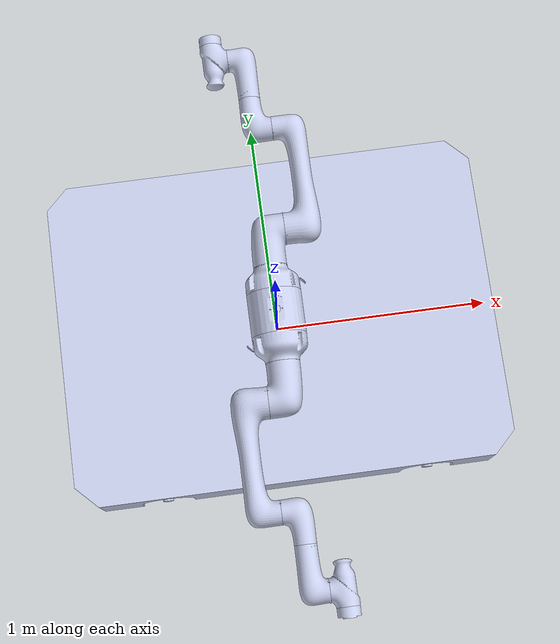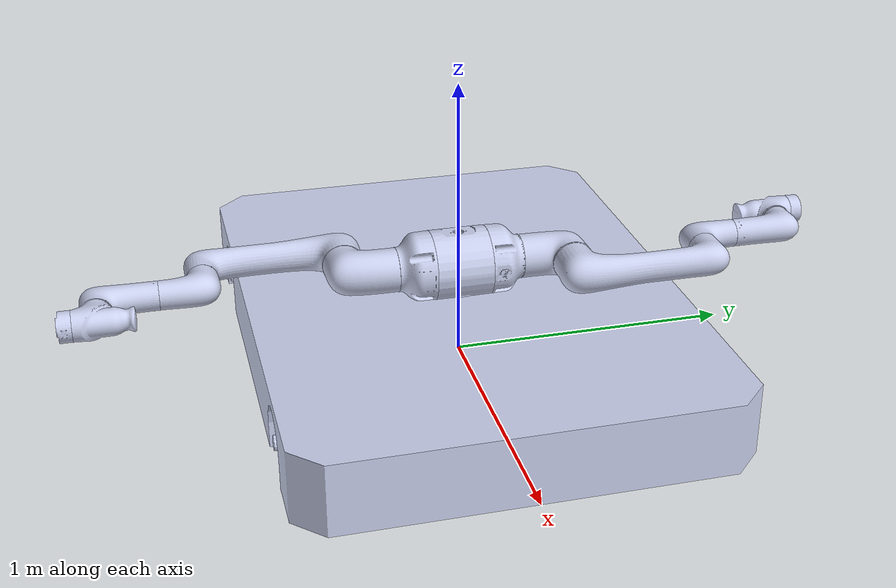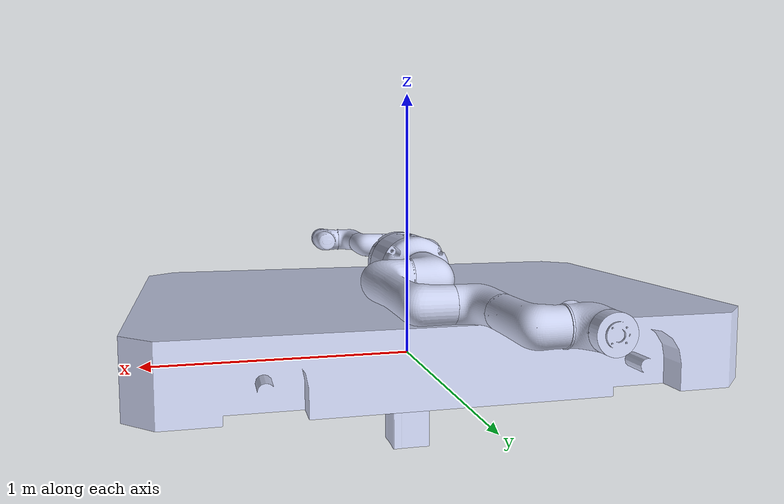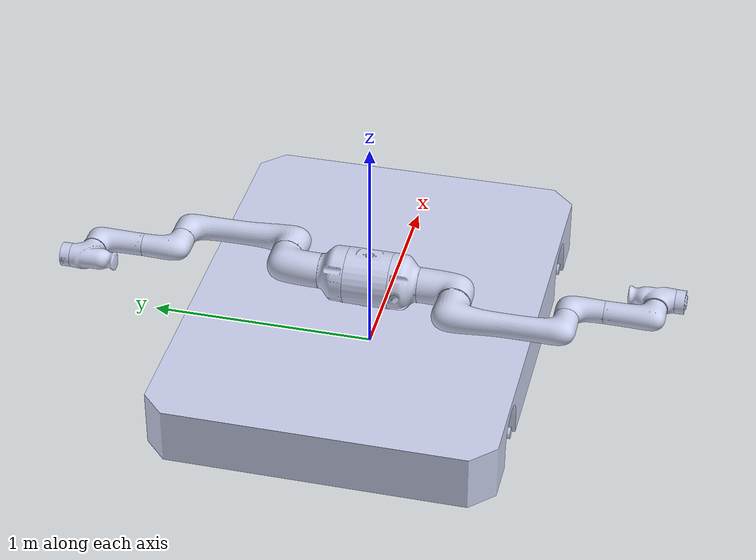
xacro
<?xml version="1.0"?>
<robot xmlns:xacro="http://www.ros.org/wiki/xacro" name="agv_description">
    <xacro:arg name="initial_positions_file" default="initial_positions.yaml" />

    <!-- Import agv_description urdf file -->
    <xacro:include filename="$(find agv_description)/urdf/agv_robot.urdf.xacro" />

    <!-- Import control_xacro -->
    <xacro:include filename="agv_description.ros2_control.xacro" />

    <xacro:agv_description_ros2_control name="FakeSystem" initial_positions_file="$(arg initial_positions_file)"/>

</robot>

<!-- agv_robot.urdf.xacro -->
<robot name="agv_description" xmlns:xacro="http://www.ros.org/wiki/xacro">

   <xacro:include filename="agv.xacro" />
   <xacro:include filename="agv_description.ros2_control.xacro" />

</robot>

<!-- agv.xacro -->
<robot xmlns:xacro="http://www.ros.org/wiki/xacro">
  <link
    name="base_link">
    <visual>
      <origin
        xyz="0 0 0"
        rpy="0 0 0" />
      <geometry>
        <mesh
          filename="package://agv_description/meshes/base_link.STL" />
      </geometry>
      <material
        name="">
        <color
          rgba="0.792156862745098 0.819607843137255 0.933333333333333 1" />
      </material>
    </visual>
    <collision>
      <origin
        xyz="0 0 0"
        rpy="0 0 0" />
      <geometry>
        <mesh
          filename="package://agv_description/meshes/base_link.STL" />
      </geometry>
    </collision>
  </link>
  <link
    name="lifting_link">
    <inertial>
      <origin
        xyz="5.95910210029443E-06 0.00179615723991137 -0.0915010153826553"
        rpy="0 0 0" />
      <mass
        value="1.35631793260657" />
      <inertia
        ixx="0.0128415081438936"
        ixy="5.9467051362697E-08"
        ixz="1.72841080463547E-07"
        iyy="0.0128594321437457"
        iyz="5.20967478268299E-05"
        izz="0.0124594541204705" />
    </inertial>
    <visual>
      <origin
        xyz="0 0 0"
        rpy="0 0 0" />
      <geometry>
        <mesh
          filename="package://agv_description/meshes/lifting_link.STL" />
      </geometry>
      <material
        name="">
        <color
          rgba="0.792156862745098 0.819607843137255 0.933333333333333 1" />
      </material>
    </visual>
    <collision>
      <origin
        xyz="0 0 0"
        rpy="0 0 0" />
      <geometry>
        <mesh
          filename="package://agv_description/meshes/lifting_link.STL" />
      </geometry>
    </collision>
  </link>
  <joint
    name="lifiting_joint"
    type="prismatic">
    <origin
      xyz="0 0 0"
      rpy="0 0 0" />
    <parent
      link="base_link" />
    <child
      link="lifting_link" />
    <axis
      xyz="0 0 1" />
    <limit
      lower="0"
      upper="0.5"
      effort="1000.0"
      velocity="0.5" />
  </joint>
  <link
    name="revolute_link">
    <inertial>
      <origin
        xyz="-1.84358108030458E-06 -0.000638442576643136 0.176227588646549"
        rpy="0 0 0" />
      <mass
        value="4.96842256256156" />
      <inertia
        ixx="0.125435241645885"
        ixy="1.77784044747171E-05"
        ixz="1.7242148412289E-06"
        iyy="0.130792947941861"
        iyz="0.000498856576232733"
        izz="0.0514999816727782" />
    </inertial>
    <visual>
      <origin
        xyz="0 0 0"
        rpy="0 0 0" />
      <geometry>
        <mesh
          filename="package://agv_description/meshes/revolute_link.STL" />
      </geometry>
      <material
        name="">
        <color
          rgba="0.792156862745098 0.819607843137255 0.933333333333333 1" />
      </material>
    </visual>
    <collision>
      <origin
        xyz="0 0 0"
        rpy="0 0 0" />
      <geometry>
        <mesh
          filename="package://agv_description/meshes/revolute_link.STL" />
      </geometry>
    </collision>
  </link>
  <joint
    name="revolute_joint"
    type="revolute">
    <origin
      xyz="0 0 0"
      rpy="0 0 0" />
    <parent
      link="lifting_link" />
    <child
      link="revolute_link" />
    <axis
      xyz="0 0 1" />
    <limit effort = "1000.0" velocity = "1.0" lower = "-3.14" upper = "3.14"/>
  </joint>

  <!-- arm1 description-->
  <link
    name="arm1_base">
    <inertial>
      <origin
        xyz="6.36038578418003E-05 -0.00504182675650544 0.0531490934325672"
        rpy="0 0 0" />
      <mass
        value="4.79371578157624" />
      <inertia
        ixx="0.0227910482676444"
        ixy="2.040692513631E-05"
        ixz="-5.84528941452051E-05"
        iyy="0.0192908399102185"
        iyz="-0.000325443374085853"
        izz="0.0321199446825035" />
    </inertial>
    <visual>
      <origin
        xyz="0 0 0"
        rpy="0 0 0" />
      <geometry>
        <mesh
          filename="package://agv_description/meshes/arm1_base.STL" />
      </geometry>
      <material
        name="">
        <color
          rgba="0.792156862745098 0.819607843137255 0.933333333333333 1" />
      </material>
    </visual>
    <collision>
      <origin
        xyz="0 0 0"
        rpy="0 0 0" />
      <geometry>
        <mesh
          filename="package://agv_description/meshes/arm1_base.STL" />
      </geometry>
    </collision>
  </link>
  <joint
    name="arm1_base"
    type="fixed">
    <origin
      xyz="0.00033177 0.099999 0.34041"
      rpy="1.5708 0 3.1383" />
    <parent
      link="revolute_link" />
    <child
      link="arm1_base" />
    <axis
      xyz="0 0 0" />
  </joint>
  <link
    name="arm1_joint1">
    <inertial>
      <origin
        xyz="0.00698710220352433 -0.546027035582058 -0.230837638466822"
        rpy="0 0 0" />
      <mass
        value="128.434205754724" />
      <inertia
        ixx="44.098206499555"
        ixy="0.188535463079881"
        ixz="0.217520837518627"
        iyy="29.8163554666647"
        iyz="-0.0220239676282299"
        izz="22.362919163985" />
    </inertial>
    <visual>
      <origin
        xyz="0 0 0"
        rpy="0 0 0" />
      <geometry>
        <mesh
          filename="package://agv_description/meshes/arm1_joint1.STL" />
      </geometry>
      <material
        name="">
        <color
          rgba="0.792156862745098 0.819607843137255 0.933333333333333 1" />
      </material>
    </visual>
    <collision>
      <origin
        xyz="0 0 0"
        rpy="0 0 0" />
      <geometry>
        <mesh
          filename="package://agv_description/meshes/arm1_joint1.STL" />
      </geometry>
    </collision>
  </link>
  <joint
    name="arm1_joint1"
    type="revolute">
    <origin
      xyz="0 0 0.125"
      rpy="0 0 0" />
    <parent
      link="arm1_base" />
    <child
      link="arm1_joint1" />
    <axis
      xyz="0 0 1" />
    <limit effort = "1000.0" velocity = "1.0" lower = "-3.14" upper = "3.14"/>
  </joint>
  <link
    name="arm1_joint2">
    <inertial>
      <origin
        xyz="0.205520637253144 -7.64475431735967E-07 0.0942728353828256"
        rpy="0 0 0" />
      <mass
        value="7.38382743981553" />
      <inertia
        ixx="0.0158523121028764"
        ixy="5.54313928804556E-07"
        ixz="-0.00195030786508713"
        iyy="0.237335851537481"
        iyz="-2.91994561342932E-07"
        izz="0.235952812528342" />
    </inertial>
    <visual>
      <origin
        xyz="0 0 0"
        rpy="0 0 0" />
      <geometry>
        <mesh
          filename="package://agv_description/meshes/arm1_joint2.STL" />
      </geometry>
      <material
        name="">
        <color
          rgba="0.792156862745098 0.819607843137255 0.933333333333333 1" />
      </material>
    </visual>
    <collision>
      <origin
        xyz="0 0 0"
        rpy="0 0 0" />
      <geometry>
        <mesh
          filename="package://agv_description/meshes/arm1_joint2.STL" />
      </geometry>
    </collision>
  </link>
  <joint
    name="arm1_joint2"
    type="revolute">
    <origin
      xyz="-0.0865 0 0.171"
      rpy="3.1416 -1.5708 3.1416" />
    <parent
      link="arm1_joint1" />
    <child
      link="arm1_joint2" />
    <axis
      xyz="0 0 1" />
    <limit effort = "1000.0" velocity = "1.0" lower = "-3.14" upper = "3.14"/>
  </joint>
  <link
    name="arm1_joint3">
    <inertial>
      <origin
        xyz="0.0413057853539247 -1.50466668225047E-06 -0.0742848759305056"
        rpy="0 0 0" />
      <mass
        value="2.08922080941151" />
      <inertia
        ixx="0.0035083422225272"
        ixy="-4.24979622469626E-07"
        ixz="0.00201900302554952"
        iyy="0.0076259021363271"
        iyz="1.58647917742713E-07"
        izz="0.0071666425488523" />
    </inertial>
    <visual>
      <origin
        xyz="0 0 0"
        rpy="0 0 0" />
      <geometry>
        <mesh
          filename="package://agv_description/meshes/arm1_joint3.STL" />
      </geometry>
      <material
        name="">
        <color
          rgba="0.792156862745098 0.819607843137255 0.933333333333333 1" />
      </material>
    </visual>
    <collision>
      <origin
        xyz="0 0 0"
        rpy="0 0 0" />
      <geometry>
        <mesh
          filename="package://agv_description/meshes/arm1_joint3.STL" />
      </geometry>
    </collision>
  </link>
  <joint
    name="arm1_joint3"
    type="revolute">
    <origin
      xyz="0.49 0 0.01"
      rpy="0 0 0" />
    <parent
      link="arm1_joint2" />
    <child
      link="arm1_joint3" />
    <axis
      xyz="0 0 1" />
    <limit effort = "1000.0" velocity = "1.0" lower = "-3.14" upper = "3.14"/>
  </joint>
  <link
    name="arm1_joint4">
    <inertial>
      <origin
        xyz="2.17507435673614E-13 -9.17821374457617E-13 0.0157947014323612"
        rpy="0 0 0" />
      <mass
        value="0.221342913273185" />
      <inertia
        ixx="0.000147801577510412"
        ixy="1.35870784819709E-10"
        ixz="-2.04633945966248E-16"
        iyy="0.00014796904051447"
        iyz="-2.30770455536986E-15"
        izz="0.000265196663946203" />
    </inertial>
    <visual>
      <origin
        xyz="0 0 0"
        rpy="0 0 0" />
      <geometry>
        <mesh
          filename="package://agv_description/meshes/arm1_joint4.STL" />
      </geometry>
      <material
        name="">
        <color
          rgba="0.792156862745098 0.819607843137255 0.933333333333333 1" />
      </material>
    </visual>
    <collision>
      <origin
        xyz="0 0 0"
        rpy="0 0 0" />
      <geometry>
        <mesh
          filename="package://agv_description/meshes/arm1_joint4.STL" />
      </geometry>
    </collision>
  </link>
  <joint
    name="arm1_joint4"
    type="revolute">
    <origin
      xyz="0.1475 0 -0.0915"
      rpy="0 1.5708 0" />
    <parent
      link="arm1_joint3" />
    <child
      link="arm1_joint4" />
    <axis
      xyz="0 0 1" />
    <limit effort = "1000.0" velocity = "1.0" lower = "-3.14" upper = "3.14"/>
  </joint>
  <link
    name="arm1_joint5">
    <inertial>
      <origin
        xyz="-0.00936173038682209 -6.40112606601351E-05 -0.0650899734413501"
        rpy="0 0 0" />
      <mass
        value="1.71702187429738" />
      <inertia
        ixx="0.00243366242204774"
        ixy="-1.28905945765869E-07"
        ixz="0.000735354203280107"
        iyy="0.00342166024563042"
        iyz="6.54937535778116E-08"
        izz="0.00331985988662609" />
    </inertial>
    <visual>
      <origin
        xyz="0 0 0"
        rpy="0 0 0" />
      <geometry>
        <mesh
          filename="package://agv_description/meshes/arm1_joint5.STL" />
      </geometry>
      <material
        name="">
        <color
          rgba="0.792156862745098 0.819607843137255 0.933333333333333 1" />
      </material>
    </visual>
    <collision>
      <origin
        xyz="0 0 0"
        rpy="0 0 0" />
      <geometry>
        <mesh
          filename="package://agv_description/meshes/arm1_joint5.STL" />
      </geometry>
    </collision>
  </link>
  <joint
    name="arm1_joint5"
    type="revolute">
    <origin
      xyz="0.0737 0 0.2125"
      rpy="3.1416 -1.5708 3.1416" />
    <parent
      link="arm1_joint4" />
    <child
      link="arm1_joint5" />
    <axis
      xyz="0 0 1" />
    <limit effort = "1000.0" velocity = "1.0" lower = "-3.14" upper = "3.14"/>
  </joint>
  <link
    name="arm1_joint6">
    <inertial>
      <origin
        xyz="-0.000164531562171 -1.87838411491725E-10 0.0256318537460429"
        rpy="0 0 0" />
      <mass
        value="0.403264772919737" />
      <inertia
        ixx="0.000341839114766193"
        ixy="2.50676289876056E-13"
        ixz="4.35642240033976E-07"
        iyy="0.00033844935912272"
        iyz="-1.27479057506192E-12"
        izz="0.000524924259169463" />
    </inertial>
    <visual>
      <origin
        xyz="0 0 0"
        rpy="0 0 0" />
      <geometry>
        <mesh
          filename="package://agv_description/meshes/arm1_joint6.STL" />
      </geometry>
      <material
        name="">
        <color
          rgba="0.792156862745098 0.819607843137255 0.933333333333333 1" />
      </material>
    </visual>
    <collision>
      <origin
        xyz="0 0 0"
        rpy="0 0 0" />
      <geometry>
        <mesh
          filename="package://agv_description/meshes/arm1_joint6.STL" />
      </geometry>
    </collision>
  </link>
  <joint
    name="arm1_joint6"
    type="revolute">
    <origin
      xyz="0.073 0 -0.0763"
      rpy="0 1.5708 0" />
    <parent
      link="arm1_joint5" />
    <child
      link="arm1_joint6" />
    <axis
      xyz="0 0 1" />
    <limit effort = "1000.0" velocity = "1.0" lower = "-3.14" upper = "3.14"/>
  </joint>
  <link
    name="arm1_tool_link" />

  <joint
    name="arm1_tool_joint" type="fixed">
      <parent link="arm1_joint6" />
      <child link="arm1_tool_link" />
      <origin xyz="0 0 0.054" rpy="0 0 0" />
  </joint>

  <!-- arm2 description-->
  <link
    name="arm2_base">
    <inertial>
      <origin
        xyz="6.16322567625768E-05 -0.00503524148895995 0.0531494630925861"
        rpy="0 0 0" />
      <mass
        value="4.7934732466409" />
      <inertia
        ixx="0.0227910452447341"
        ixy="2.0406925285877E-05"
        ixz="-5.84528936699837E-05"
        iyy="0.0192908342376988"
        iyz="-0.000325443373515039"
        izz="0.03211994166045" />
    </inertial>
    <visual>
      <origin
        xyz="0 0 0"
        rpy="0 0 0" />
      <geometry>
        <mesh
          filename="package://agv_description/meshes/arm2_base.STL" />
      </geometry>
      <material
        name="">
        <color
          rgba="0.792156862745098 0.819607843137255 0.933333333333333 1" />
      </material>
    </visual>
    <collision>
      <origin
        xyz="0 0 0"
        rpy="0 0 0" />
      <geometry>
        <mesh
          filename="package://agv_description/meshes/arm2_base.STL" />
      </geometry>
    </collision>
  </link>
  <joint
    name="arm2_base"
    type="fixed">
    <origin
      xyz="-0.00033177 -0.099999 0.34041"
      rpy="1.5708 0 -0.0033177" />
    <parent
      link="revolute_link" />
    <child
      link="arm2_base" />
    <axis
      xyz="0 0 0" />
  </joint>
  <link
    name="arm2_joint1">
    <inertial>
      <origin
        xyz="-0.00698710220324618 -0.546027035586403 -0.219162361533468"
        rpy="0 0 0" />
      <mass
        value="128.434205754724" />
      <inertia
        ixx="44.098206499555"
        ixy="-0.188535463079881"
        ixz="0.217520837518476"
        iyy="29.8163554666647"
        iyz="0.0220239676282312"
        izz="22.362919163985" />
    </inertial>
    <visual>
      <origin
        xyz="0 0 0"
        rpy="0 0 0" />
      <geometry>
        <mesh
          filename="package://agv_description/meshes/arm2_joint1.STL" />
      </geometry>
      <material
        name="">
        <color
          rgba="0.792156862745098 0.819607843137255 0.933333333333333 1" />
      </material>
    </visual>
    <collision>
      <origin
        xyz="0 0 0"
        rpy="0 0 0" />
      <geometry>
        <mesh
          filename="package://agv_description/meshes/arm2_joint1.STL" />
      </geometry>
    </collision>
  </link>
  <joint
    name="arm2_joint1"
    type="revolute">
    <origin
      xyz="0 0 0.125"
      rpy="0 0 0" />
    <parent
      link="arm2_base" />
    <child
      link="arm2_joint1" />
    <axis
      xyz="0 0 1" />
    <limit effort = "1000.0" velocity = "1.0" lower = "-3.14" upper = "3.14"/>
  </joint>
  <link
    name="arm2_joint2">
    <inertial>
      <origin
        xyz="0.205520637252733 -7.64468162106624E-07 0.0942728353827997"
        rpy="0 0 0" />
      <mass
        value="7.3838274398378" />
      <inertia
        ixx="0.0158523121029449"
        ixy="5.5430644578013E-07"
        ixz="-0.00195030786510058"
        iyy="0.237335851537932"
        iyz="-2.91994623432707E-07"
        izz="0.235952812528862" />
    </inertial>
    <visual>
      <origin
        xyz="0 0 0"
        rpy="0 0 0" />
      <geometry>
        <mesh
          filename="package://agv_description/meshes/arm2_joint2.STL" />
      </geometry>
      <material
        name="">
        <color
          rgba="0.792156862745098 0.819607843137255 0.933333333333333 1" />
      </material>
    </visual>
    <collision>
      <origin
        xyz="0 0 0"
        rpy="0 0 0" />
      <geometry>
        <mesh
          filename="package://agv_description/meshes/arm2_joint2.STL" />
      </geometry>
    </collision>
  </link>
  <joint
    name="arm2_joint2"
    type="revolute">
    <origin
      xyz="-0.0865 0 0.171"
      rpy="3.1416 -1.5708 3.1416" />
    <parent
      link="arm2_joint1" />
    <child
      link="arm2_joint2" />
    <axis
      xyz="0 0 1" />
    <limit effort = "1000.0" velocity = "1.0" lower = "-3.14" upper = "3.14"/>
  </joint>
  <link
    name="arm2_joint3">
    <inertial>
      <origin
        xyz="0.0413057853532984 -1.50466526527282E-06 -0.0742848759305183"
        rpy="0 0 0" />
      <mass
        value="2.08922080943039" />
      <inertia
        ixx="0.00350834215176002"
        ixy="-4.25029702288039E-07"
        ixz="0.00201900305050577"
        iyy="0.00762590222733057"
        iyz="1.58617886307435E-07"
        izz="0.00716664258923811" />
    </inertial>
    <visual>
      <origin
        xyz="0 0 0"
        rpy="0 0 0" />
      <geometry>
        <mesh
          filename="package://agv_description/meshes/arm2_joint3.STL" />
      </geometry>
      <material
        name="">
        <color
          rgba="0.792156862745098 0.819607843137255 0.933333333333333 1" />
      </material>
    </visual>
    <collision>
      <origin
        xyz="0 0 0"
        rpy="0 0 0" />
      <geometry>
        <mesh
          filename="package://agv_description/meshes/arm2_joint3.STL" />
      </geometry>
    </collision>
  </link>
  <joint
    name="arm2_joint3"
    type="revolute">
    <origin
      xyz="0.49 0 0.01"
      rpy="0 0 0" />
    <parent
      link="arm2_joint2" />
    <child
      link="arm2_joint3" />
    <axis
      xyz="0 0 1" />
    <limit effort = "1000.0" velocity = "1.0" lower = "-3.14" upper = "3.14"/>
  </joint>
  <link
    name="arm2_joint4">
    <inertial>
      <origin
        xyz="2.17671367042094E-13 -3.71258579434652E-13 0.0157947014323612"
        rpy="0 0 0" />
      <mass
        value="0.221342913273187" />
      <inertia
        ixx="0.000147801577510414"
        ixy="1.35870783900383E-10"
        ixz="-2.03681577502595E-16"
        iyy="0.000147969040514471"
        iyz="1.74658629356398E-15"
        izz="0.000265196663946205" />
    </inertial>
    <visual>
      <origin
        xyz="0 0 0"
        rpy="0 0 0" />
      <geometry>
        <mesh
          filename="package://agv_description/meshes/arm2_joint4.STL" />
      </geometry>
      <material
        name="">
        <color
          rgba="0.792156862745098 0.819607843137255 0.933333333333333 1" />
      </material>
    </visual>
    <collision>
      <origin
        xyz="0 0 0"
        rpy="0 0 0" />
      <geometry>
        <mesh
          filename="package://agv_description/meshes/arm2_joint4.STL" />
      </geometry>
    </collision>
  </link>
  <joint
    name="arm2_joint4"
    type="revolute">
    <origin
      xyz="0.1475 0 -0.0915"
      rpy="0 1.5708 0" />
    <parent
      link="arm2_joint3" />
    <child
      link="arm2_joint4" />
    <axis
      xyz="0 0 1" />
    <limit effort = "1000.0" velocity = "1.0" lower = "-3.14" upper = "3.14"/>
  </joint>
  <link
    name="arm2_joint5">
    <inertial>
      <origin
        xyz="-0.00936173038675303 -6.40112608304433E-05 -0.0650899734413594"
        rpy="0 0 0" />
      <mass
        value="1.71702187429735" />
      <inertia
        ixx="0.00243366242204618"
        ixy="-1.28905981643675E-07"
        ixz="0.000735354203279126"
        iyy="0.00342166024563025"
        iyz="6.54937792358708E-08"
        izz="0.00331985988662747" />
    </inertial>
    <visual>
      <origin
        xyz="0 0 0"
        rpy="0 0 0" />
      <geometry>
        <mesh
          filename="package://agv_description/meshes/arm2_joint5.STL" />
      </geometry>
      <material
        name="">
        <color
          rgba="0.792156862745098 0.819607843137255 0.933333333333333 1" />
      </material>
    </visual>
    <collision>
      <origin
        xyz="0 0 0"
        rpy="0 0 0" />
      <geometry>
        <mesh
          filename="package://agv_description/meshes/arm2_joint5.STL" />
      </geometry>
    </collision>
  </link>
  <joint
    name="arm2_joint5"
    type="revolute">
    <origin
      xyz="0.0737 0 0.2125"
      rpy="3.1416 -1.5708 3.1416" />
    <parent
      link="arm2_joint4" />
    <child
      link="arm2_joint5" />
    <axis
      xyz="0 0 1" />
    <limit effort = "1000.0" velocity = "1.0" lower = "-3.14" upper = "3.14"/>
  </joint>
  <link
    name="arm2_joint6">
    <inertial>
      <origin
        xyz="-0.000164531562170667 -1.86952897607284E-10 0.0256318537460429"
        rpy="0 0 0" />
      <mass
        value="0.403264772919735" />
      <inertia
        ixx="0.000341839114766191"
        ixy="2.50706461885638E-13"
        ixz="4.35642240035203E-07"
        iyy="0.000338449359122716"
        iyz="-1.26834013651661E-12"
        izz="0.000524924259169459" />
    </inertial>
    <visual>
      <origin
        xyz="0 0 0"
        rpy="0 0 0" />
      <geometry>
        <mesh
          filename="package://agv_description/meshes/arm2_joint6.STL" />
      </geometry>
      <material
        name="">
        <color
          rgba="0.792156862745098 0.819607843137255 0.933333333333333 1" />
      </material>
    </visual>
    <collision>
      <origin
        xyz="0 0 0"
        rpy="0 0 0" />
      <geometry>
        <mesh
          filename="package://agv_description/meshes/arm2_joint6.STL" />
      </geometry>
    </collision>
  </link>
  <joint
    name="arm2_joint6"
    type="revolute">
    <origin
      xyz="0.073 0 -0.0763"
      rpy="0 1.5708 0" />
    <parent
      link="arm2_joint5" />
    <child
      link="arm2_joint6" />
    <axis
      xyz="0 0 1" />
    <limit effort = "1000.0" velocity = "1.0" lower = "-3.14" upper = "3.14"/>
  </joint>
  <link
    name="arm2_tool_link" />
  <joint
    name="arm2_tool_joint" type="fixed">
      <parent link="arm2_joint6" />
      <child link="arm2_tool_link" />
      <origin xyz="0 0 0.054" rpy="0 0 0" />
  </joint>

</robot>
